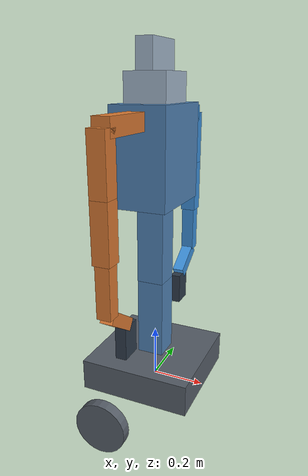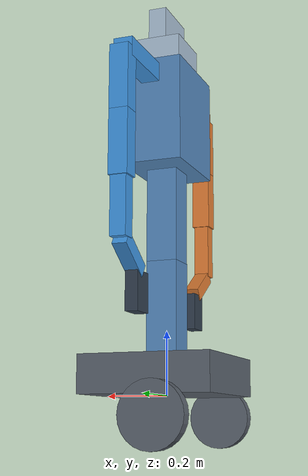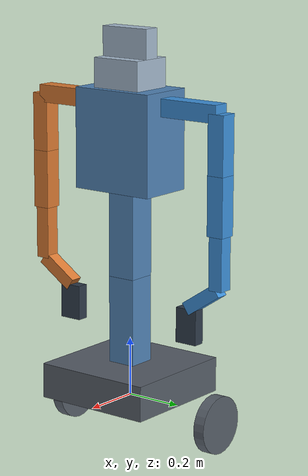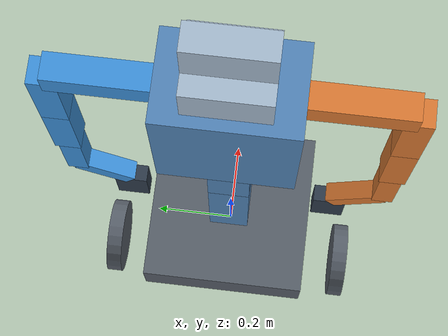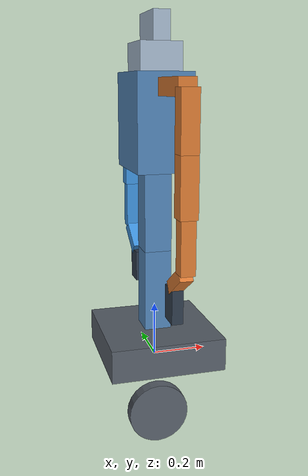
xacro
<?xml version="1.0"?>
<robot xmlns:xacro="http://www.ros.org/wiki/xacro" name="wheel_human_dummy">
  <xacro:arg name="wrists_enabled" default="true"/>
  <xacro:include filename="$(find wheel_human_description)/urdf/dummy_body.xacro"/>
  <xacro:wheel_human_dummy_body wrists_enabled="$(arg wrists_enabled)"/>
</robot>

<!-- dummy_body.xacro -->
<robot xmlns:xacro="http://www.ros.org/wiki/xacro">
  <!-- Legacy wrists_enabled argument is accepted for include compatibility;
       both wrist joints are always revolute in this description. -->
  <xacro:macro name="wheel_human_dummy_body" params="wrists_enabled:=true">
  <material name="body_blue">
    <color rgba="0.32 0.52 0.72 1" />
  </material>
  <material name="left_arm_blue">
    <color rgba="0.24 0.57 0.86 1" />
  </material>
  <material name="right_arm_orange">
    <color rgba="0.86 0.48 0.20 1" />
  </material>
  <material name="base_gray">
    <color rgba="0.34 0.37 0.41 1" />
  </material>
  <material name="head_light">
    <color rgba="0.65 0.73 0.81 1" />
  </material>
  <material name="hand_dark">
    <color rgba="0.18 0.23 0.29 1" />
  </material>
  <!-- Fixed root reference. Root geometry only; no root inertia. -->
  <link name="base_link">
    <visual>
      <origin xyz="0 0 0.06" rpy="0 0 0" />
      <geometry>
        <box size="0.42 0.42 0.12" />
      </geometry>
      <material name="base_gray" />
    </visual>
    <collision>
      <origin xyz="0 0 0.06" rpy="0 0 0" />
      <geometry>
        <box size="0.42 0.42 0.12" />
      </geometry>
    </collision>
  </link>
  <!-- Left wheel: joint frame from Kinematics_only; cylinder, inertia and limits are placeholders.
       Description only: no motor mapping or control interfaces. -->
  <joint name="Left_Wheel_Joint" type="revolute">
    <parent link="base_link" />
    <child link="Left_Wheel_Link" />
    <origin xyz="-0.075 0.30942 -0.063709" rpy="1.5708 0 -3.1416" />
    <axis xyz="0 0 1" />
    <limit lower="-3.14159265359" upper="3.14159265359" effort="1" velocity="1" />
  </joint>
  <link name="Left_Wheel_Link">
    <inertial>
      <origin xyz="0 0 0" rpy="0 0 0" />
      <mass value="0.5" />
      <inertia ixx="0.00131666666667" ixy="0" ixz="0" iyy="0.00131666666667" iyz="0" izz="0.0025" />
    </inertial>
    <visual>
      <origin xyz="0 0 0" rpy="0 0 0" />
      <geometry><cylinder radius="0.1" length="0.04" /></geometry>
      <material name="base_gray" />
    </visual>
    <collision>
      <origin xyz="0 0 0" rpy="0 0 0" />
      <geometry><cylinder radius="0.1" length="0.04" /></geometry>
    </collision>
  </link>
  <!-- Right wheel: joint frame from Kinematics_only; cylinder, inertia and limits are placeholders.
       Description only: no motor mapping or control interfaces. -->
  <joint name="Right_Wheel_Joint" type="revolute">
    <parent link="base_link" />
    <child link="Right_Wheel_Link" />
    <origin xyz="-0.075 -0.31058 -0.063709" rpy="1.5708 0 -3.1416" />
    <axis xyz="0 0 1" />
    <limit lower="-3.14159265359" upper="3.14159265359" effort="1" velocity="1" />
  </joint>
  <link name="Right_Wheel_Link">
    <inertial>
      <origin xyz="0 0 0" rpy="0 0 0" />
      <mass value="0.5" />
      <inertia ixx="0.00131666666667" ixy="0" ixz="0" iyy="0.00131666666667" iyz="0" izz="0.0025" />
    </inertial>
    <visual>
      <origin xyz="0 0 0" rpy="0 0 0" />
      <geometry><cylinder radius="0.1" length="0.04" /></geometry>
      <material name="base_gray" />
    </visual>
    <collision>
      <origin xyz="0 0 0" rpy="0 0 0" />
      <geometry><cylinder radius="0.1" length="0.04" /></geometry>
    </collision>
  </link>
  <!-- base_link -> Feet_Joint -> Lower_Leg_Link -->
  <joint name="Feet_Joint" type="revolute">
    <parent link="base_link" />
    <child link="Lower_Leg_Link" />
    <origin xyz="0 0 0.12" rpy="0 0 0" />
    <axis xyz="0 1 0" />
    <limit lower="-1.57079632679" upper="1.57079632679" effort="20" velocity="1" />
  </joint>
  <link name="Lower_Leg_Link">
    <inertial>
      <origin xyz="0 0 0.15" rpy="0 0 0" />
      <mass value="2" />
      <inertia ixx="0.0166666666667" ixy="0" ixz="0" iyy="0.0166666666667" iyz="0" izz="0.00333333333333" />
    </inertial>
    <visual>
      <origin xyz="0 0 0.15" rpy="0 0 0" />
      <geometry>
        <box size="0.1 0.1 0.3" />
      </geometry>
      <material name="body_blue" />
    </visual>
    <collision>
      <origin xyz="0 0 0.15" rpy="0 0 0" />
      <geometry>
        <box size="0.1 0.1 0.3" />
      </geometry>
    </collision>
  </link>
  <!-- Lower_Leg_Link -> Knee_Joint -> Upper_Leg_Link -->
  <joint name="Knee_Joint" type="revolute">
    <parent link="Lower_Leg_Link" />
    <child link="Upper_Leg_Link" />
    <origin xyz="0 0 0.3" rpy="0 0 0" />
    <axis xyz="0 1 0" />
    <limit lower="-1.57079632679" upper="1.57079632679" effort="20" velocity="1" />
  </joint>
  <link name="Upper_Leg_Link">
    <inertial>
      <origin xyz="0 0 0.15" rpy="0 0 0" />
      <mass value="2" />
      <inertia ixx="0.0166666666667" ixy="0" ixz="0" iyy="0.0166666666667" iyz="0" izz="0.00333333333333" />
    </inertial>
    <visual>
      <origin xyz="0 0 0.15" rpy="0 0 0" />
      <geometry>
        <box size="0.1 0.1 0.3" />
      </geometry>
      <material name="body_blue" />
    </visual>
    <collision>
      <origin xyz="0 0 0.15" rpy="0 0 0" />
      <geometry>
        <box size="0.1 0.1 0.3" />
      </geometry>
    </collision>
  </link>
  <!-- Upper_Leg_Link -> Hip_Joint -> Body_Link -->
  <joint name="Hip_Joint" type="revolute">
    <parent link="Upper_Leg_Link" />
    <child link="Body_Link" />
    <origin xyz="0 0 0.3" rpy="0 0 0" />
    <axis xyz="0 1 0" />
    <limit lower="-1.57079632679" upper="1.57079632679" effort="20" velocity="1" />
  </joint>
  <link name="Body_Link">
    <inertial>
      <origin xyz="0 0 0.17" rpy="0 0 0" />
      <mass value="5" />
      <inertia ixx="0.0856666666667" ixy="0" ixz="0" iyy="0.0648333333333" iyz="0" izz="0.0541666666667" />
    </inertial>
    <visual>
      <origin xyz="0 0 0.17" rpy="0 0 0" />
      <geometry>
        <box size="0.2 0.3 0.34" />
      </geometry>
      <material name="body_blue" />
    </visual>
    <collision>
      <origin xyz="0 0 0.17" rpy="0 0 0" />
      <geometry>
        <box size="0.2 0.3 0.34" />
      </geometry>
    </collision>
  </link>
  <!-- Body_Link -> Neck_Joint -> Head_Link -->
  <joint name="Neck_Joint" type="revolute">
    <parent link="Body_Link" />
    <child link="Head_Link" />
    <origin xyz="0 0 0.34" rpy="0 0 0" />
    <axis xyz="0 0 1" />
    <limit lower="-1.57079632679" upper="1.57079632679" effort="20" velocity="1" />
  </joint>
  <link name="Head_Link">
    <inertial>
      <origin xyz="0 0 0.05" rpy="0 0 0" />
      <mass value="0.6" />
      <inertia ixx="0.00212" ixy="0" ixz="0" iyy="0.001625" iyz="0" izz="0.002745" />
    </inertial>
    <visual>
      <origin xyz="0 0 0.05" rpy="0 0 0" />
      <geometry>
        <box size="0.15 0.18 0.1" />
      </geometry>
      <material name="head_light" />
    </visual>
    <collision>
      <origin xyz="0 0 0.05" rpy="0 0 0" />
      <geometry>
        <box size="0.15 0.18 0.1" />
      </geometry>
    </collision>
  </link>
  <!-- Head_Link -> Face_Joint -> Face_Link -->
  <joint name="Face_Joint" type="revolute">
    <parent link="Head_Link" />
    <child link="Face_Link" />
    <origin xyz="0 0 0.1" rpy="0 0 0" />
    <axis xyz="0 1 0" />
    <limit lower="-1.57079632679" upper="1.57079632679" effort="20" velocity="1" />
  </joint>
  <link name="Face_Link">
    <inertial>
      <origin xyz="0 0 0.05" rpy="0 0 0" />
      <mass value="0.2" />
      <inertia ixx="0.000706666666667" ixy="0" ixz="0" iyy="0.000226666666667" iyz="0" izz="0.0006" />
    </inertial>
    <visual>
      <origin xyz="0 0 0.05" rpy="0 0 0" />
      <geometry>
        <box size="0.06 0.18 0.1" />
      </geometry>
      <material name="head_light" />
    </visual>
    <collision>
      <origin xyz="0 0 0.05" rpy="0 0 0" />
      <geometry>
        <box size="0.06 0.18 0.1" />
      </geometry>
    </collision>
  </link>
  <!-- LEFT ARM: five body revolute joints, followed by a revolute SDK wrist. -->
  <!-- Body_Link -> Left_Shoulder_Joint -> Left_Arm_Link1 -->
  <joint name="Left_Shoulder_Joint" type="revolute">
    <parent link="Body_Link" />
    <child link="Left_Arm_Link1" />
    <origin xyz="0 0.15 0.29" rpy="0 0 0" />
    <axis xyz="1 0 0" />
    <limit lower="-1.57079632679" upper="1.57079632679" effort="20" velocity="1" />
  </joint>
  <link name="Left_Arm_Link1">
    <inertial>
      <origin xyz="0 0.11 0" rpy="0 0 0" />
      <mass value="0.5" />
      <inertia ixx="0.00216666666667" ixy="0" ixz="0" iyy="0.0003" iyz="0" izz="0.00216666666667" />
    </inertial>
    <visual>
      <origin xyz="0 0.11 0" rpy="0 0 0" />
      <geometry>
        <box size="0.06 0.22 0.06" />
      </geometry>
      <material name="left_arm_blue" />
    </visual>
    <collision>
      <origin xyz="0 0.11 0" rpy="0 0 0" />
      <geometry>
        <box size="0.06 0.22 0.06" />
      </geometry>
    </collision>
  </link>
  <!-- Left_Arm_Link1 -> Left_Arm_Joint1 -> Left_Arm_Link2 -->
  <joint name="Left_Arm_Joint1" type="revolute">
    <parent link="Left_Arm_Link1" />
    <child link="Left_Arm_Link2" />
    <origin xyz="0 0.22 0" rpy="0 0 0" />
    <axis xyz="0 1 0" />
    <limit lower="-1.57079632679" upper="1.57079632679" effort="20" velocity="1" />
  </joint>
  <link name="Left_Arm_Link2">
    <inertial>
      <origin xyz="0 0 -0.1" rpy="0 0 0" />
      <mass value="0.8" />
      <inertia ixx="0.00290666666667" ixy="0" ixz="0" iyy="0.00290666666667" iyz="0" izz="0.00048" />
    </inertial>
    <visual>
      <origin xyz="0 0 -0.1" rpy="0 0 0" />
      <geometry>
        <box size="0.06 0.06 0.2" />
      </geometry>
      <material name="left_arm_blue" />
    </visual>
    <collision>
      <origin xyz="0 0 -0.1" rpy="0 0 0" />
      <geometry>
        <box size="0.06 0.06 0.2" />
      </geometry>
    </collision>
  </link>
  <!-- Left_Arm_Link2 -> Left_Arm_Joint2 -> Left_Arm_Link3 -->
  <joint name="Left_Arm_Joint2" type="revolute">
    <parent link="Left_Arm_Link2" />
    <child link="Left_Arm_Link3" />
    <origin xyz="0 0 -0.2" rpy="0 0 0" />
    <axis xyz="0 0 1" />
    <limit lower="-1.57079632679" upper="1.57079632679" effort="20" velocity="1" />
  </joint>
  <link name="Left_Arm_Link3">
    <inertial>
      <origin xyz="0 0 -0.1" rpy="0 0 0" />
      <mass value="0.7" />
      <inertia ixx="0.00254333333333" ixy="0" ixz="0" iyy="0.00254333333333" iyz="0" izz="0.00042" />
    </inertial>
    <visual>
      <origin xyz="0 0 -0.1" rpy="0 0 0" />
      <geometry>
        <box size="0.06 0.06 0.2" />
      </geometry>
      <material name="left_arm_blue" />
    </visual>
    <collision>
      <origin xyz="0 0 -0.1" rpy="0 0 0" />
      <geometry>
        <box size="0.06 0.06 0.2" />
      </geometry>
    </collision>
  </link>
  <!-- Left_Arm_Joint3: the unlabeled circle in the provided drawing. -->
  <!-- Left_Arm_Link3 -> Left_Arm_Joint3 -> Left_Arm_Link4 -->
  <joint name="Left_Arm_Joint3" type="revolute">
    <parent link="Left_Arm_Link3" />
    <child link="Left_Arm_Link4" />
    <origin xyz="0 0 -0.2" rpy="0 0 0" />
    <axis xyz="0 1 0" />
    <limit lower="-1.57079632679" upper="1.57079632679" effort="20" velocity="1" />
  </joint>
  <link name="Left_Arm_Link4">
    <inertial>
      <origin xyz="0 0 -0.09" rpy="0 0 0" />
      <mass value="0.5" />
      <inertia ixx="0.00145416666667" ixy="0" ixz="0" iyy="0.00145416666667" iyz="0" izz="0.000208333333333" />
    </inertial>
    <visual>
      <origin xyz="0 0 -0.09" rpy="0 0 0" />
      <geometry>
        <box size="0.05 0.05 0.18" />
      </geometry>
      <material name="left_arm_blue" />
    </visual>
    <collision>
      <origin xyz="0 0 -0.09" rpy="0 0 0" />
      <geometry>
        <box size="0.05 0.05 0.18" />
      </geometry>
    </collision>
  </link>
  <!-- Left_Arm_Link4 -> Left_Arm_Joint4 -> Left_Arm_Link5 -->
  <joint name="Left_Arm_Joint4" type="revolute">
    <parent link="Left_Arm_Link4" />
    <child link="Left_Arm_Link5" />
    <origin xyz="0 0 -0.18" rpy="0 0 0" />
    <axis xyz="0 0 1" />
    <limit lower="-1.57079632679" upper="1.57079632679" effort="20" velocity="1" />
  </joint>
  <!-- Short inward/downward end segment. Rotated box COM frame; principal inertia about its COM. -->
  <link name="Left_Arm_Link5">
    <inertial>
      <origin xyz="0 -0.06 -0.04" rpy="2.15879893034 0 0" />
      <mass value="0.3" />
      <inertia ixx="0.000570625" ixy="0" ixz="0" iyy="0.000570625" iyz="0" izz="0.00010125" />
    </inertial>
    <visual>
      <origin xyz="0 -0.06 -0.04" rpy="2.15879893034 0 0" />
      <geometry>
        <box size="0.045 0.045 0.144222051019" />
      </geometry>
      <material name="left_arm_blue" />
    </visual>
    <collision>
      <origin xyz="0 -0.06 -0.04" rpy="2.15879893034 0 0" />
      <geometry>
        <box size="0.045 0.045 0.144222051019" />
      </geometry>
    </collision>
  </link>
  <!-- Left_Arm_Link5 -> Left_Wrist_Joint -> Left_Hand_Link -->
  <joint name="Left_Wrist_Joint" type="revolute">
    <!-- Synthetic wrist axis/limits for software tests; must be calibrated. -->
    <axis xyz="0 1 0"/>
    <limit lower="-1.0" upper="1.0" velocity="1.0" effort="1.0"/>
    <parent link="Left_Arm_Link5" />
    <child link="Left_Hand_Link" />
    <origin xyz="0 -0.12 -0.08" rpy="0 0 0" />
  </joint>
  <!-- Rigid hand placeholder; no finger articulation in the supplied topology. -->
  <link name="Left_Hand_Link">
    <inertial>
      <origin xyz="0 0 -0.06" rpy="0 0 0" />
      <mass value="0.25" />
      <inertia ixx="0.000433333333333" ixy="0" ixz="0" iyy="0.000333333333333" iyz="0" izz="0.000166666666667" />
    </inertial>
    <visual>
      <origin xyz="0 0 -0.06" rpy="0 0 0" />
      <geometry>
        <box size="0.04 0.08 0.12" />
      </geometry>
      <material name="hand_dark" />
    </visual>
    <collision>
      <origin xyz="0 0 -0.06" rpy="0 0 0" />
      <geometry>
        <box size="0.04 0.08 0.12" />
      </geometry>
    </collision>
  </link>
  <!-- RIGHT ARM: five body revolute joints, followed by a revolute SDK wrist. -->
  <!-- Body_Link -> Right_Shoulder_Joint -> Right_Arm_Link1 -->
  <joint name="Right_Shoulder_Joint" type="revolute">
    <parent link="Body_Link" />
    <child link="Right_Arm_Link1" />
    <origin xyz="0 -0.15 0.29" rpy="0 0 0" />
    <axis xyz="1 0 0" />
    <limit lower="-1.57079632679" upper="1.57079632679" effort="20" velocity="1" />
  </joint>
  <link name="Right_Arm_Link1">
    <inertial>
      <origin xyz="0 -0.11 0" rpy="0 0 0" />
      <mass value="0.5" />
      <inertia ixx="0.00216666666667" ixy="0" ixz="0" iyy="0.0003" iyz="0" izz="0.00216666666667" />
    </inertial>
    <visual>
      <origin xyz="0 -0.11 0" rpy="0 0 0" />
      <geometry>
        <box size="0.06 0.22 0.06" />
      </geometry>
      <material name="right_arm_orange" />
    </visual>
    <collision>
      <origin xyz="0 -0.11 0" rpy="0 0 0" />
      <geometry>
        <box size="0.06 0.22 0.06" />
      </geometry>
    </collision>
  </link>
  <!-- Right_Arm_Link1 -> Right_Arm_Joint1 -> Right_Arm_Link2 -->
  <joint name="Right_Arm_Joint1" type="revolute">
    <parent link="Right_Arm_Link1" />
    <child link="Right_Arm_Link2" />
    <origin xyz="0 -0.22 0" rpy="0 0 0" />
    <axis xyz="0 1 0" />
    <limit lower="-1.57079632679" upper="1.57079632679" effort="20" velocity="1" />
  </joint>
  <link name="Right_Arm_Link2">
    <inertial>
      <origin xyz="0 0 -0.1" rpy="0 0 0" />
      <mass value="0.8" />
      <inertia ixx="0.00290666666667" ixy="0" ixz="0" iyy="0.00290666666667" iyz="0" izz="0.00048" />
    </inertial>
    <visual>
      <origin xyz="0 0 -0.1" rpy="0 0 0" />
      <geometry>
        <box size="0.06 0.06 0.2" />
      </geometry>
      <material name="right_arm_orange" />
    </visual>
    <collision>
      <origin xyz="0 0 -0.1" rpy="0 0 0" />
      <geometry>
        <box size="0.06 0.06 0.2" />
      </geometry>
    </collision>
  </link>
  <!-- Right_Arm_Link2 -> Right_Arm_Joint2 -> Right_Arm_Link3 -->
  <joint name="Right_Arm_Joint2" type="revolute">
    <parent link="Right_Arm_Link2" />
    <child link="Right_Arm_Link3" />
    <origin xyz="0 0 -0.2" rpy="0 0 0" />
    <axis xyz="0 0 1" />
    <limit lower="-1.57079632679" upper="1.57079632679" effort="20" velocity="1" />
  </joint>
  <link name="Right_Arm_Link3">
    <inertial>
      <origin xyz="0 0 -0.1" rpy="0 0 0" />
      <mass value="0.7" />
      <inertia ixx="0.00254333333333" ixy="0" ixz="0" iyy="0.00254333333333" iyz="0" izz="0.00042" />
    </inertial>
    <visual>
      <origin xyz="0 0 -0.1" rpy="0 0 0" />
      <geometry>
        <box size="0.06 0.06 0.2" />
      </geometry>
      <material name="right_arm_orange" />
    </visual>
    <collision>
      <origin xyz="0 0 -0.1" rpy="0 0 0" />
      <geometry>
        <box size="0.06 0.06 0.2" />
      </geometry>
    </collision>
  </link>
  <!-- Right_Arm_Link3 -> Right_Arm_Joint3 -> Right_Arm_Link4 -->
  <joint name="Right_Arm_Joint3" type="revolute">
    <parent link="Right_Arm_Link3" />
    <child link="Right_Arm_Link4" />
    <origin xyz="0 0 -0.2" rpy="0 0 0" />
    <axis xyz="0 1 0" />
    <limit lower="-1.57079632679" upper="1.57079632679" effort="20" velocity="1" />
  </joint>
  <link name="Right_Arm_Link4">
    <inertial>
      <origin xyz="0 0 -0.09" rpy="0 0 0" />
      <mass value="0.5" />
      <inertia ixx="0.00145416666667" ixy="0" ixz="0" iyy="0.00145416666667" iyz="0" izz="0.000208333333333" />
    </inertial>
    <visual>
      <origin xyz="0 0 -0.09" rpy="0 0 0" />
      <geometry>
        <box size="0.05 0.05 0.18" />
      </geometry>
      <material name="right_arm_orange" />
    </visual>
    <collision>
      <origin xyz="0 0 -0.09" rpy="0 0 0" />
      <geometry>
        <box size="0.05 0.05 0.18" />
      </geometry>
    </collision>
  </link>
  <!-- Right_Arm_Link4 -> Right_Arm_Joint4 -> Right_Arm_Link5 -->
  <joint name="Right_Arm_Joint4" type="revolute">
    <parent link="Right_Arm_Link4" />
    <child link="Right_Arm_Link5" />
    <origin xyz="0 0 -0.18" rpy="0 0 0" />
    <axis xyz="0 0 1" />
    <limit lower="-1.57079632679" upper="1.57079632679" effort="20" velocity="1" />
  </joint>
  <!-- Short inward/downward end segment. Rotated box COM frame; principal inertia about its COM. -->
  <link name="Right_Arm_Link5">
    <inertial>
      <origin xyz="0 0.06 -0.04" rpy="-2.15879893034 0 0" />
      <mass value="0.3" />
      <inertia ixx="0.000570625" ixy="0" ixz="0" iyy="0.000570625" iyz="0" izz="0.00010125" />
    </inertial>
    <visual>
      <origin xyz="0 0.06 -0.04" rpy="-2.15879893034 0 0" />
      <geometry>
        <box size="0.045 0.045 0.144222051019" />
      </geometry>
      <material name="right_arm_orange" />
    </visual>
    <collision>
      <origin xyz="0 0.06 -0.04" rpy="-2.15879893034 0 0" />
      <geometry>
        <box size="0.045 0.045 0.144222051019" />
      </geometry>
    </collision>
  </link>
  <!-- Right_Arm_Link5 -> Right_Wrist_Joint -> Right_Hand_Link -->
  <joint name="Right_Wrist_Joint" type="revolute">
    <!-- Synthetic wrist axis/limits for software tests; must be calibrated. -->
    <axis xyz="0 1 0"/>
    <limit lower="-1.0" upper="1.0" velocity="1.0" effort="1.0"/>
    <parent link="Right_Arm_Link5" />
    <child link="Right_Hand_Link" />
    <origin xyz="0 0.12 -0.08" rpy="0 0 0" />
  </joint>
  <!-- Rigid hand placeholder; no finger articulation in the supplied topology. -->
  <link name="Right_Hand_Link">
    <inertial>
      <origin xyz="0 0 -0.06" rpy="0 0 0" />
      <mass value="0.25" />
      <inertia ixx="0.000433333333333" ixy="0" ixz="0" iyy="0.000333333333333" iyz="0" izz="0.000166666666667" />
    </inertial>
    <visual>
      <origin xyz="0 0 -0.06" rpy="0 0 0" />
      <geometry>
        <box size="0.04 0.08 0.12" />
      </geometry>
      <material name="hand_dark" />
    </visual>
    <collision>
      <origin xyz="0 0 -0.06" rpy="0 0 0" />
      <geometry>
        <box size="0.04 0.08 0.12" />
      </geometry>
    </collision>
  </link>
  </xacro:macro>
</robot>
